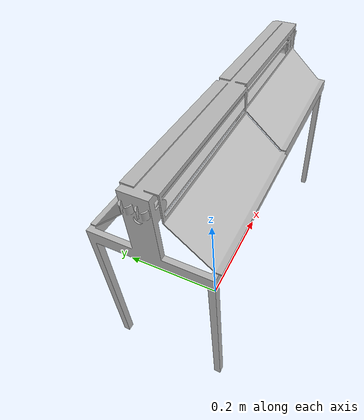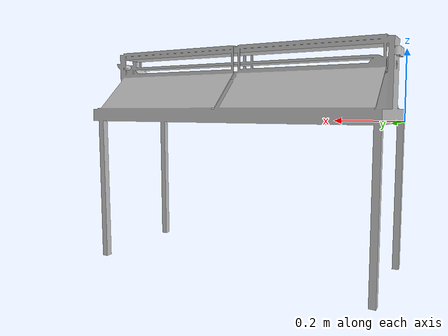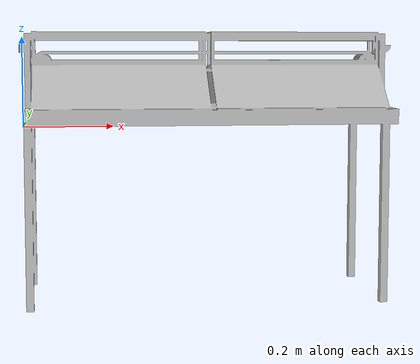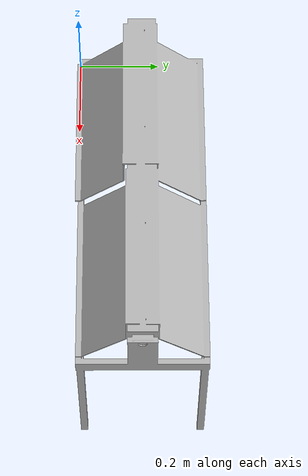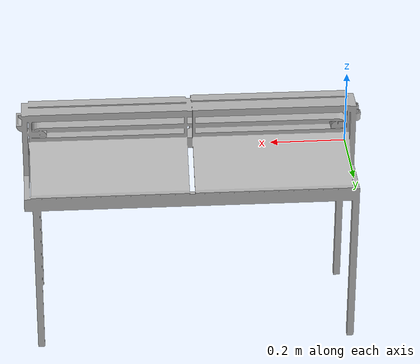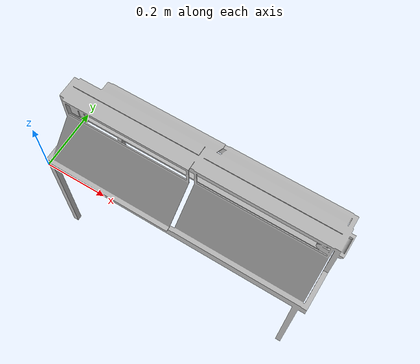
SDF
<?xml version='1.0'?>
<sdf version='1.6'>
  <model name='mesh'>
    <link name='link_0'>
      <inertial>
        <mass>1</mass>
        <inertia>
          <ixx>0.166667</ixx>
          <ixy>0</ixy>
          <ixz>0</ixz>
          <iyy>0.166667</iyy>
          <iyz>0</iyz>
          <izz>0.166667</izz>
        </inertia>
      </inertial>
      <visual name='visual'>
        <pose>0 0 0 0 0 0</pose>
        <geometry>
          <mesh>
            <uri>model://mesh/meshes/mesh.obj</uri>
            <scale>0.0007 0.0007 0.0007</scale>
          </mesh>
        </geometry>
      </visual>
      <collision name='collision'>
        <geometry>
          <mesh>
            <uri>model://mesh/meshes/mesh.obj</uri>
            <scale>0.0007 0.0007 0.0007</scale>
          </mesh>
        </geometry>
      </collision>
    </link>
    <static>1</static>
    <allow_auto_disable>1</allow_auto_disable>
  </model>
</sdf>
